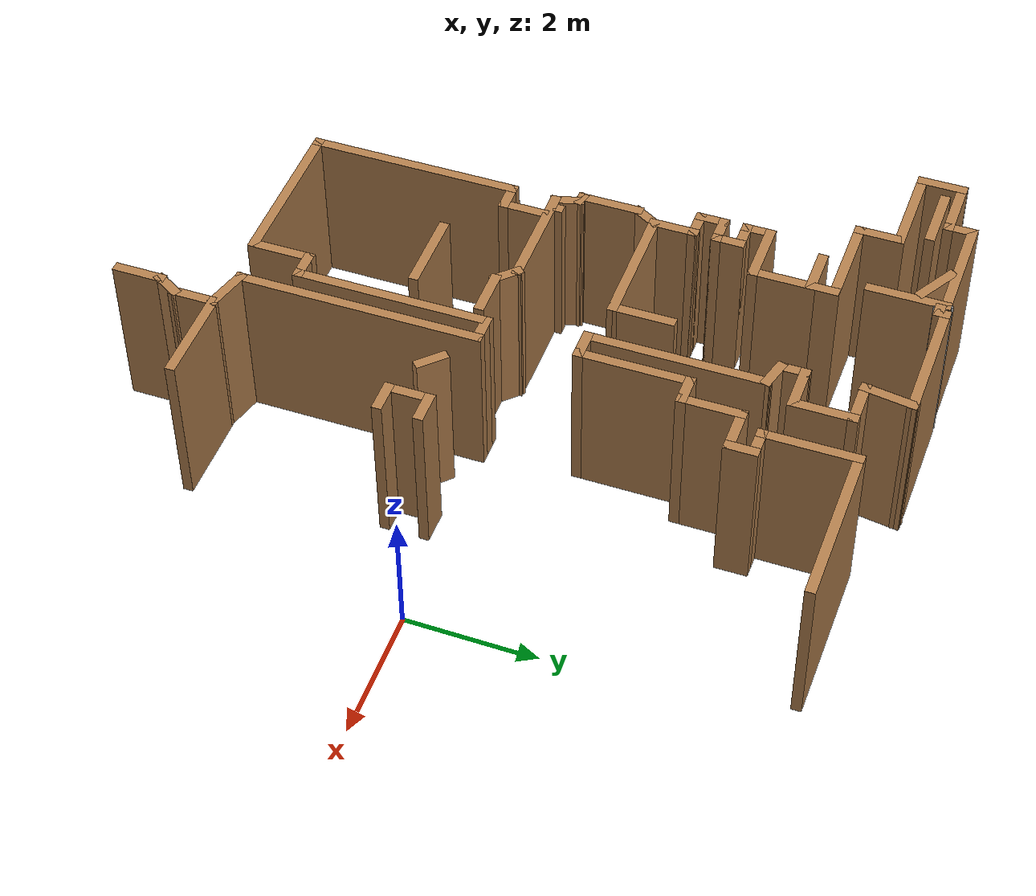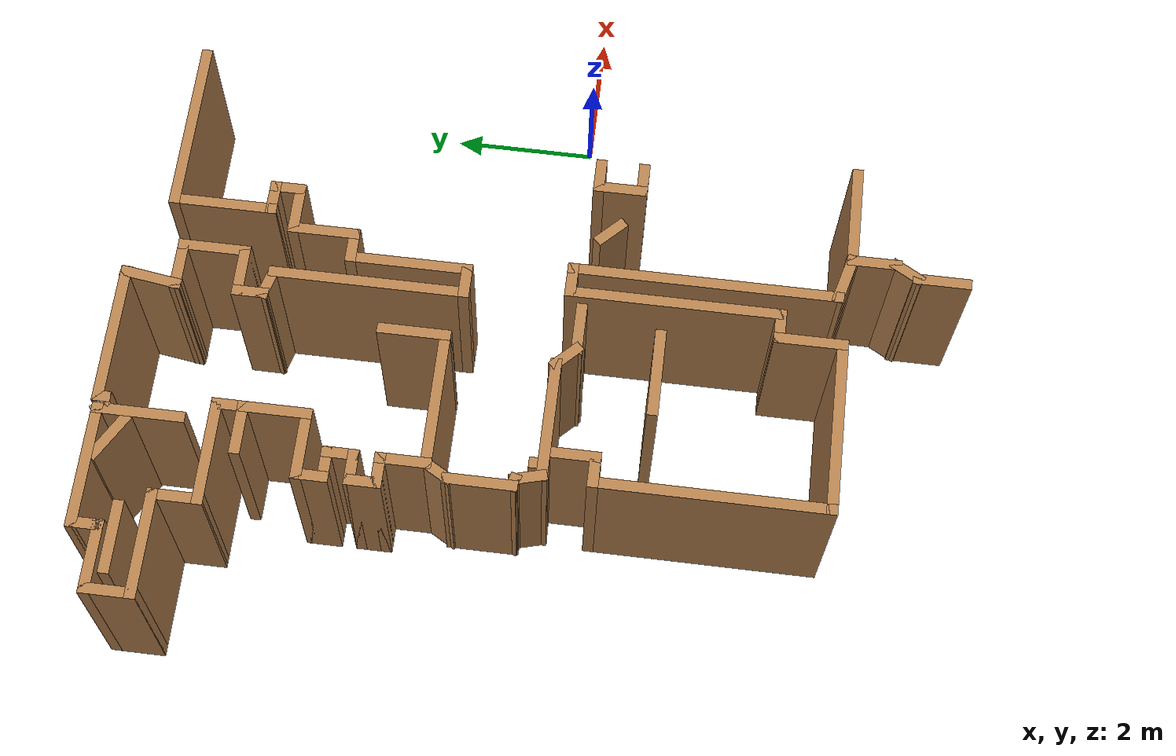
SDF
<sdf version="1.6">
 <model name="map_30">
  <pose>-2.27007 0.308618 0 0 -0 0</pose>
  <link name="Wall_10">
   <collision name="Wall_10_Collision">
    <geometry><box><size>0.75 0.15 2.5</size></box></geometry>
    <pose>0 0 1.25 0 -0 0</pose>
   </collision>
   <visual name="Wall_10_Visual">
    <pose>0 0 1.25 0 -0 0</pose>
    <geometry><box><size>0.75 0.15 2.5</size></box></geometry>
    <material>
     <script><uri>file://media/materials/scripts/gazebo.material</uri><name>Gazebo/Wood</name></script>
     <ambient>1 1 1 1</ambient>
    </material>
    <meta><layer>0</layer></meta>
   </visual>
   <pose>-6.15506 4.97315 0 0 -0 -1.5708</pose>
  </link>
  <link name="Wall_13">
   <collision name="Wall_13_Collision">
    <geometry><box><size>1.5 0.15 2.5</size></box></geometry>
    <pose>0 0 1.25 0 -0 0</pose>
   </collision>
   <visual name="Wall_13_Visual">
    <pose>0 0 1.25 0 -0 0</pose>
    <geometry><box><size>1.5 0.15 2.5</size></box></geometry>
    <material>
     <script><uri>file://media/materials/scripts/gazebo.material</uri><name>Gazebo/Wood</name></script>
     <ambient>1 1 1 1</ambient>
    </material>
    <meta><layer>0</layer></meta>
   </visual>
   <pose>-5.48006 4.67315 0 0 -0 0</pose>
  </link>
  <link name="Wall_14">
   <collision name="Wall_14_Collision">
    <geometry><box><size>0.75 0.15 2.5</size></box></geometry>
    <pose>0 0 1.25 0 -0 0</pose>
   </collision>
   <visual name="Wall_14_Visual">
    <pose>0 0 1.25 0 -0 0</pose>
    <geometry><box><size>0.75 0.15 2.5</size></box></geometry>
    <material>
     <script><uri>file://media/materials/scripts/gazebo.material</uri><name>Gazebo/Wood</name></script>
     <ambient>1 1 1 1</ambient>
    </material>
    <meta><layer>0</layer></meta>
   </visual>
   <pose>-4.80506 4.37315 0 0 -0 -1.5708</pose>
  </link>
  <link name="Wall_15">
   <collision name="Wall_15_Collision">
    <geometry><box><size>1.5 0.15 2.5</size></box></geometry>
    <pose>0 0 1.25 0 -0 0</pose>
   </collision>
   <visual name="Wall_15_Visual">
    <pose>0 0 1.25 0 -0 0</pose>
    <geometry><box><size>1.5 0.15 2.5</size></box></geometry>
    <material>
     <script><uri>file://media/materials/scripts/gazebo.material</uri><name>Gazebo/Wood</name></script>
     <ambient>1 1 1 1</ambient>
    </material>
    <meta><layer>0</layer></meta>
   </visual>
   <pose>-4.13006 4.07315 0 0 -0 0</pose>
  </link>
  <link name="Wall_153">
   <collision name="Wall_153_Collision">
    <geometry><box><size>2.5 0.15 2.5</size></box></geometry>
    <pose>0 0 1.25 0 -0 0</pose>
   </collision>
   <visual name="Wall_153_Visual">
    <pose>0 0 1.25 0 -0 0</pose>
    <geometry><box><size>2.5 0.15 2.5</size></box></geometry>
    <material>
     <script><uri>file://media/materials/scripts/gazebo.material</uri><name>Gazebo/Wood</name></script>
     <ambient>1 1 1 1</ambient>
    </material>
    <meta><layer>0</layer></meta>
   </visual>
   <pose>0.680059 5.21618 0 0 -0 3.14159</pose>
  </link>
  <link name="Wall_154">
   <collision name="Wall_154_Collision">
    <geometry><box><size>1.5 0.15 2.5</size></box></geometry>
    <pose>0 0 1.25 0 -0 0</pose>
   </collision>
   <visual name="Wall_154_Visual">
    <pose>0 0 1.25 0 -0 0</pose>
    <geometry><box><size>1.5 0.15 2.5</size></box></geometry>
    <material>
     <script><uri>file://media/materials/scripts/gazebo.material</uri><name>Gazebo/Wood</name></script>
     <ambient>1 1 1 1</ambient>
    </material>
    <meta><layer>0</layer></meta>
   </visual>
   <pose>-0.494941 4.54118 0 0 -0 -1.5708</pose>
  </link>
  <link name="Wall_155">
   <collision name="Wall_155_Collision">
    <geometry><box><size>0.5 0.15 2.5</size></box></geometry>
    <pose>0 0 1.25 0 -0 0</pose>
   </collision>
   <visual name="Wall_155_Visual">
    <pose>0 0 1.25 0 -0 0</pose>
    <geometry><box><size>0.5 0.15 2.5</size></box></geometry>
    <material>
     <script><uri>file://media/materials/scripts/gazebo.material</uri><name>Gazebo/Wood</name></script>
     <ambient>1 1 1 1</ambient>
    </material>
    <meta><layer>0</layer></meta>
   </visual>
   <pose>-0.319941 3.86618 0 0 -0 0</pose>
  </link>
  <link name="Wall_156">
   <collision name="Wall_156_Collision">
    <geometry><box><size>0.5 0.15 2.5</size></box></geometry>
    <pose>0 0 1.25 0 -0 0</pose>
   </collision>
   <visual name="Wall_156_Visual">
    <pose>0 0 1.25 0 -0 0</pose>
    <geometry><box><size>0.5 0.15 2.5</size></box></geometry>
    <material>
     <script><uri>file://media/materials/scripts/gazebo.material</uri><name>Gazebo/Wood</name></script>
     <ambient>1 1 1 1</ambient>
    </material>
    <meta><layer>0</layer></meta>
   </visual>
   <pose>-0.14494 3.69118 0 0 -0 -1.5708</pose>
  </link>
  <link name="Wall_157">
   <collision name="Wall_157_Collision">
    <geometry><box><size>0.75 0.15 2.5</size></box></geometry>
    <pose>0 0 1.25 0 -0 0</pose>
   </collision>
   <visual name="Wall_157_Visual">
    <pose>0 0 1.25 0 -0 0</pose>
    <geometry><box><size>0.75 0.15 2.5</size></box></geometry>
    <material>
     <script><uri>file://media/materials/scripts/gazebo.material</uri><name>Gazebo/Wood</name></script>
     <ambient>1 1 1 1</ambient>
    </material>
    <meta><layer>0</layer></meta>
   </visual>
   <pose>-0.444941 3.51618 0 0 -0 3.14159</pose>
  </link>
  <link name="Wall_158">
   <collision name="Wall_158_Collision">
    <geometry><box><size>1 0.15 2.5</size></box></geometry>
    <pose>0 0 1.25 0 -0 0</pose>
   </collision>
   <visual name="Wall_158_Visual">
    <pose>0 0 1.25 0 -0 0</pose>
    <geometry><box><size>1 0.15 2.5</size></box></geometry>
    <material>
     <script><uri>file://media/materials/scripts/gazebo.material</uri><name>Gazebo/Wood</name></script>
     <ambient>1 1 1 1</ambient>
    </material>
    <meta><layer>0</layer></meta>
   </visual>
   <pose>-0.744941 3.09118 0 0 -0 -1.5708</pose>
  </link>
  <link name="Wall_16">
   <collision name="Wall_16_Collision">
    <geometry><box><size>0.5 0.15 2.5</size></box></geometry>
    <pose>0 0 1.25 0 -0 0</pose>
   </collision>
   <visual name="Wall_16_Visual">
    <pose>0 0 1.25 0 -0 0</pose>
    <geometry><box><size>0.5 0.15 2.5</size></box></geometry>
    <material>
     <script><uri>file://media/materials/scripts/gazebo.material</uri><name>Gazebo/Wood</name></script>
     <ambient>1 1 1 1</ambient>
    </material>
    <meta><layer>0</layer></meta>
   </visual>
   <pose>-3.45506 3.89815 0 0 -0 -1.5708</pose>
  </link>
  <link name="Wall_161">
   <collision name="Wall_161_Collision">
    <geometry><box><size>0.5 0.15 2.5</size></box></geometry>
    <pose>0 0 1.25 0 -0 0</pose>
   </collision>
   <visual name="Wall_161_Visual">
    <pose>0 0 1.25 0 -0 0</pose>
    <geometry><box><size>0.5 0.15 2.5</size></box></geometry>
    <material>
     <script><uri>file://media/materials/scripts/gazebo.material</uri><name>Gazebo/Wood</name></script>
     <ambient>1 1 1 1</ambient>
    </material>
    <meta><layer>0</layer></meta>
   </visual>
   <pose>-0.919941 2.66618 0 0 -0 3.14159</pose>
  </link>
  <link name="Wall_162">
   <collision name="Wall_162_Collision">
    <geometry><box><size>1.75 0.15 2.5</size></box></geometry>
    <pose>0 0 1.25 0 -0 0</pose>
   </collision>
   <visual name="Wall_162_Visual">
    <pose>0 0 1.25 0 -0 0</pose>
    <geometry><box><size>1.75 0.15 2.5</size></box></geometry>
    <material>
     <script><uri>file://media/materials/scripts/gazebo.material</uri><name>Gazebo/Wood</name></script>
     <ambient>1 1 1 1</ambient>
    </material>
    <meta><layer>0</layer></meta>
   </visual>
   <pose>-1.09494 1.86618 0 0 -0 -1.5708</pose>
  </link>
  <link name="Wall_163">
   <collision name="Wall_163_Collision">
    <geometry><box><size>0.5 0.15 2.5</size></box></geometry>
    <pose>0 0 1.25 0 -0 0</pose>
   </collision>
   <visual name="Wall_163_Visual">
    <pose>0 0 1.25 0 -0 0</pose>
    <geometry><box><size>0.5 0.15 2.5</size></box></geometry>
    <material>
     <script><uri>file://media/materials/scripts/gazebo.material</uri><name>Gazebo/Wood</name></script>
     <ambient>1 1 1 1</ambient>
    </material>
    <meta><layer>0</layer></meta>
   </visual>
   <pose>-1.26994 1.06618 0 0 -0 3.14159</pose>
  </link>
  <link name="Wall_164">
   <collision name="Wall_164_Collision">
    <geometry><box><size>2.75 0.15 2.5</size></box></geometry>
    <pose>0 0 1.25 0 -0 0</pose>
   </collision>
   <visual name="Wall_164_Visual">
    <pose>0 0 1.25 0 -0 0</pose>
    <geometry><box><size>2.75 0.15 2.5</size></box></geometry>
    <material>
     <script><uri>file://media/materials/scripts/gazebo.material</uri><name>Gazebo/Wood</name></script>
     <ambient>1 1 1 1</ambient>
    </material>
    <meta><layer>0</layer></meta>
   </visual>
   <pose>-1.44494 2.36618 0 0 -0 1.5708</pose>
  </link>
  <link name="Wall_165">
   <collision name="Wall_165_Collision">
    <geometry><box><size>0.5 0.15 2.5</size></box></geometry>
    <pose>0 0 1.25 0 -0 0</pose>
   </collision>
   <visual name="Wall_165_Visual">
    <pose>0 0 1.25 0 -0 0</pose>
    <geometry><box><size>0.5 0.15 2.5</size></box></geometry>
    <material>
     <script><uri>file://media/materials/scripts/gazebo.material</uri><name>Gazebo/Wood</name></script>
     <ambient>1 1 1 1</ambient>
    </material>
    <meta><layer>0</layer></meta>
   </visual>
   <pose>-1.61398 3.71148 0 0 -0 2.87979</pose>
  </link>
  <link name="Wall_166">
   <collision name="Wall_166_Collision">
    <geometry><box><size>0.5 0.15 2.5</size></box></geometry>
    <pose>0 0 1.25 0 -0 0</pose>
   </collision>
   <visual name="Wall_166_Visual">
    <pose>0 0 1.25 0 -0 0</pose>
    <geometry><box><size>0.5 0.15 2.5</size></box></geometry>
    <material>
     <script><uri>file://media/materials/scripts/gazebo.material</uri><name>Gazebo/Wood</name></script>
     <ambient>1 1 1 1</ambient>
    </material>
    <meta><layer>0</layer></meta>
   </visual>
   <pose>-1.78302 3.93177 0 0 -0 1.5708</pose>
  </link>
  <link name="Wall_17">
   <collision name="Wall_17_Collision">
    <geometry><box><size>0.75 0.15 2.5</size></box></geometry>
    <pose>0 0 1.25 0 -0 0</pose>
   </collision>
   <visual name="Wall_17_Visual">
    <pose>0 0 1.25 0 -0 0</pose>
    <geometry><box><size>0.75 0.15 2.5</size></box></geometry>
    <material>
     <script><uri>file://media/materials/scripts/gazebo.material</uri><name>Gazebo/Wood</name></script>
     <ambient>1 1 1 1</ambient>
    </material>
    <meta><layer>0</layer></meta>
   </visual>
   <pose>-3.75506 3.72315 0 0 -0 3.14159</pose>
  </link>
  <link name="Wall_171">
   <collision name="Wall_171_Collision">
    <geometry><box><size>0.75 0.15 2.5</size></box></geometry>
    <pose>0 0 1.25 0 -0 0</pose>
   </collision>
   <visual name="Wall_171_Visual">
    <pose>0 0 1.25 0 -0 0</pose>
    <geometry><box><size>0.75 0.15 2.5</size></box></geometry>
    <material>
     <script><uri>file://media/materials/scripts/gazebo.material</uri><name>Gazebo/Wood</name></script>
     <ambient>1 1 1 1</ambient>
    </material>
    <meta><layer>0</layer></meta>
   </visual>
   <pose>-1.48301 4.10677 0 0 -0 0</pose>
  </link>
  <link name="Wall_172">
   <collision name="Wall_172_Collision">
    <geometry><box><size>1 0.15 2.5</size></box></geometry>
    <pose>0 0 1.25 0 -0 0</pose>
   </collision>
   <visual name="Wall_172_Visual">
    <pose>0 0 1.25 0 -0 0</pose>
    <geometry><box><size>1 0.15 2.5</size></box></geometry>
    <material>
     <script><uri>file://media/materials/scripts/gazebo.material</uri><name>Gazebo/Wood</name></script>
     <ambient>1 1 1 1</ambient>
    </material>
    <meta><layer>0</layer></meta>
   </visual>
   <pose>-1.18301 4.53177 0 0 -0 1.5708</pose>
  </link>
  <link name="Wall_173">
   <collision name="Wall_173_Collision">
    <geometry><box><size>0.75 0.15 2.5</size></box></geometry>
    <pose>0 0 1.25 0 -0 0</pose>
   </collision>
   <visual name="Wall_173_Visual">
    <pose>0 0 1.25 0 -0 0</pose>
    <geometry><box><size>0.75 0.15 2.5</size></box></geometry>
    <material>
     <script><uri>file://media/materials/scripts/gazebo.material</uri><name>Gazebo/Wood</name></script>
     <ambient>1 1 1 1</ambient>
    </material>
    <meta><layer>0</layer></meta>
   </visual>
   <pose>-1.48301 4.95677 0 0 -0 3.14159</pose>
  </link>
  <link name="Wall_174">
   <collision name="Wall_174_Collision">
    <geometry><box><size>0.852629 0.15 2.5</size></box></geometry>
    <pose>0 0 1.25 0 -0 0</pose>
   </collision>
   <visual name="Wall_174_Visual">
    <pose>0 0 1.25 0 -0 0</pose>
    <geometry><box><size>0.852629 0.15 2.5</size></box></geometry>
    <material>
     <script><uri>file://media/materials/scripts/gazebo.material</uri><name>Gazebo/Wood</name></script>
     <ambient>1 1 1 1</ambient>
    </material>
    <meta><layer>0</layer></meta>
   </visual>
   <pose>-1.73368 5.3046 0 0 -0 1.42991</pose>
  </link>
  <link name="Wall_176">
   <collision name="Wall_176_Collision">
    <geometry><box><size>1.25 0.15 2.5</size></box></geometry>
    <pose>0 0 1.25 0 -0 0</pose>
   </collision>
   <visual name="Wall_176_Visual">
    <pose>0 0 1.25 0 -0 0</pose>
    <geometry><box><size>1.25 0.15 2.5</size></box></geometry>
    <material>
     <script><uri>file://media/materials/scripts/gazebo.material</uri><name>Gazebo/Wood</name></script>
     <ambient>1 1 1 1</ambient>
    </material>
    <meta><layer>0</layer></meta>
   </visual>
   <pose>-3.70506 5.07315 0 0 -0 -1.5708</pose>
  </link>
  <link name="Wall_180">
   <collision name="Wall_180_Collision">
    <geometry><box><size>1 0.15 2.5</size></box></geometry>
    <pose>0 0 1.25 0 -0 0</pose>
   </collision>
   <visual name="Wall_180_Visual">
    <pose>0 0 1.25 0 -0 0</pose>
    <geometry><box><size>1 0.15 2.5</size></box></geometry>
    <material>
     <script><uri>file://media/materials/scripts/gazebo.material</uri><name>Gazebo/Wood</name></script>
     <ambient>1 1 1 1</ambient>
    </material>
    <meta><layer>0</layer></meta>
   </visual>
   <pose>-5.44016 5.07417 0 0 -0 3.14159</pose>
  </link>
  <link name="Wall_182">
   <collision name="Wall_182_Collision">
    <geometry><box><size>0.75 0.15 2.5</size></box></geometry>
    <pose>0 0 1.25 0 -0 0</pose>
   </collision>
   <visual name="Wall_182_Visual">
    <pose>0 0 1.25 0 -0 0</pose>
    <geometry><box><size>0.75 0.15 2.5</size></box></geometry>
    <material>
     <script><uri>file://media/materials/scripts/gazebo.material</uri><name>Gazebo/Wood</name></script>
     <ambient>1 1 1 1</ambient>
    </material>
    <meta><layer>0</layer></meta>
   </visual>
   <pose>-4.08456 5.38678 0 0 -0 -0.523599</pose>
  </link>
  <link name="Wall_186">
   <collision name="Wall_186_Collision">
    <geometry><box><size>2 0.15 2.5</size></box></geometry>
    <pose>0 0 1.25 0 -0 0</pose>
   </collision>
   <visual name="Wall_186_Visual">
    <pose>0 0 1.25 0 -0 0</pose>
    <geometry><box><size>2 0.15 2.5</size></box></geometry>
    <material>
     <script><uri>file://media/materials/scripts/gazebo.material</uri><name>Gazebo/Wood</name></script>
     <ambient>1 1 1 1</ambient>
    </material>
    <meta><layer>0</layer></meta>
   </visual>
   <pose>-3.03006 1.22315 0 0 -0 0</pose>
  </link>
  <link name="Wall_187">
   <collision name="Wall_187_Collision">
    <geometry><box><size>1 0.15 2.5</size></box></geometry>
    <pose>0 0 1.25 0 -0 0</pose>
   </collision>
   <visual name="Wall_187_Visual">
    <pose>0 0 1.25 0 -0 0</pose>
    <geometry><box><size>1 0.15 2.5</size></box></geometry>
    <material>
     <script><uri>file://media/materials/scripts/gazebo.material</uri><name>Gazebo/Wood</name></script>
     <ambient>1 1 1 1</ambient>
    </material>
    <meta><layer>0</layer></meta>
   </visual>
   <pose>-2.10506 1.64815 0 0 -0 1.5708</pose>
  </link>
  <link name="Wall_189">
   <collision name="Wall_189_Collision">
    <geometry><box><size>1.25 0.15 2.5</size></box></geometry>
    <pose>0 0 1.25 0 -0 0</pose>
   </collision>
   <visual name="Wall_189_Visual">
    <pose>0 0 1.25 0 -0 0</pose>
    <geometry><box><size>1.25 0.15 2.5</size></box></geometry>
    <material>
     <script><uri>file://media/materials/scripts/gazebo.material</uri><name>Gazebo/Wood</name></script>
     <ambient>1 1 1 1</ambient>
    </material>
    <meta><layer>0</layer></meta>
   </visual>
   <pose>-2.30374 -1.6337 0 0 -0 3.14159</pose>
  </link>
  <link name="Wall_191">
   <collision name="Wall_191_Collision">
    <geometry><box><size>1.5 0.15 2.5</size></box></geometry>
    <pose>0 0 1.25 0 -0 0</pose>
   </collision>
   <visual name="Wall_191_Visual">
    <pose>0 0 1.25 0 -0 0</pose>
    <geometry><box><size>1.5 0.15 2.5</size></box></geometry>
    <material>
     <script><uri>file://media/materials/scripts/gazebo.material</uri><name>Gazebo/Wood</name></script>
     <ambient>1 1 1 1</ambient>
    </material>
    <meta><layer>0</layer></meta>
   </visual>
   <pose>0.350366 -4.11681 0 0 -0 0</pose>
  </link>
  <link name="Wall_193">
   <collision name="Wall_193_Collision">
    <geometry><box><size>0.5 0.15 2.5</size></box></geometry>
    <pose>0 0 1.25 0 -0 0</pose>
   </collision>
   <visual name="Wall_193_Visual">
    <pose>0 0 1.25 0 -0 0</pose>
    <geometry><box><size>0.5 0.15 2.5</size></box></geometry>
    <material>
     <script><uri>file://media/materials/scripts/gazebo.material</uri><name>Gazebo/Wood</name></script>
     <ambient>1 1 1 1</ambient>
    </material>
    <meta><layer>0</layer></meta>
   </visual>
   <pose>-0.288422 -0.809094 0 0 -0 -0.785398</pose>
  </link>
  <link name="Wall_195">
   <collision name="Wall_195_Collision">
    <geometry><box><size>0.75 0.15 2.5</size></box></geometry>
    <pose>0 0 1.25 0 -0 0</pose>
   </collision>
   <visual name="Wall_195_Visual">
    <pose>0 0 1.25 0 -0 0</pose>
    <geometry><box><size>0.75 0.15 2.5</size></box></geometry>
    <material>
     <script><uri>file://media/materials/scripts/gazebo.material</uri><name>Gazebo/Wood</name></script>
     <ambient>1 1 1 1</ambient>
    </material>
    <meta><layer>0</layer></meta>
   </visual>
   <pose>0.397406 -0.869697 0 0 -0 -1.5708</pose>
  </link>
  <link name="Wall_196">
   <collision name="Wall_196_Collision">
    <geometry><box><size>0.5 0.15 2.5</size></box></geometry>
    <pose>0 0 1.25 0 -0 0</pose>
   </collision>
   <visual name="Wall_196_Visual">
    <pose>0 0 1.25 0 -0 0</pose>
    <geometry><box><size>0.5 0.15 2.5</size></box></geometry>
    <material>
     <script><uri>file://media/materials/scripts/gazebo.material</uri><name>Gazebo/Wood</name></script>
     <ambient>1 1 1 1</ambient>
    </material>
    <meta><layer>0</layer></meta>
   </visual>
   <pose>0.572406 -1.1697 0 0 -0 0</pose>
  </link>
  <link name="Wall_198">
   <collision name="Wall_198_Collision">
    <geometry><box><size>0.5 0.15 2.5</size></box></geometry>
    <pose>0 0 1.25 0 -0 0</pose>
   </collision>
   <visual name="Wall_198_Visual">
    <pose>0 0 1.25 0 -0 0</pose>
    <geometry><box><size>0.5 0.15 2.5</size></box></geometry>
    <material>
     <script><uri>file://media/materials/scripts/gazebo.material</uri><name>Gazebo/Wood</name></script>
     <ambient>1 1 1 1</ambient>
    </material>
    <meta><layer>0</layer></meta>
   </visual>
   <pose>0.572406 -0.569697 0 0 -0 3.14159</pose>
  </link>
  <link name="Wall_21">
   <collision name="Wall_21_Collision">
    <geometry><box><size>1 0.15 2.5</size></box></geometry>
    <pose>0 0 1.25 0 -0 0</pose>
   </collision>
   <visual name="Wall_21_Visual">
    <pose>0 0 1.25 0 -0 0</pose>
    <geometry><box><size>1 0.15 2.5</size></box></geometry>
    <material>
     <script><uri>file://media/materials/scripts/gazebo.material</uri><name>Gazebo/Wood</name></script>
     <ambient>1 1 1 1</ambient>
    </material>
    <meta><layer>0</layer></meta>
   </visual>
   <pose>-3.45506 3.29815 0 0 -0 -1.5708</pose>
  </link>
  <link name="Wall_22">
   <collision name="Wall_22_Collision">
    <geometry><box><size>1 0.15 2.5</size></box></geometry>
    <pose>0 0 1.25 0 -0 0</pose>
   </collision>
   <visual name="Wall_22_Visual">
    <pose>0 0 1.25 0 -0 0</pose>
    <geometry><box><size>1 0.15 2.5</size></box></geometry>
    <material>
     <script><uri>file://media/materials/scripts/gazebo.material</uri><name>Gazebo/Wood</name></script>
     <ambient>1 1 1 1</ambient>
    </material>
    <meta><layer>0</layer></meta>
   </visual>
   <pose>-3.88006 2.87315 0 0 -0 3.14159</pose>
  </link>
  <link name="Wall_23">
   <collision name="Wall_23_Collision">
    <geometry><box><size>0.5 0.15 2.5</size></box></geometry>
    <pose>0 0 1.25 0 -0 0</pose>
   </collision>
   <visual name="Wall_23_Visual">
    <pose>0 0 1.25 0 -0 0</pose>
    <geometry><box><size>0.5 0.15 2.5</size></box></geometry>
    <material>
     <script><uri>file://media/materials/scripts/gazebo.material</uri><name>Gazebo/Wood</name></script>
     <ambient>1 1 1 1</ambient>
    </material>
    <meta><layer>0</layer></meta>
   </visual>
   <pose>-4.30506 2.69815 0 0 -0 -1.5708</pose>
  </link>
  <link name="Wall_24">
   <collision name="Wall_24_Collision">
    <geometry><box><size>0.5 0.15 2.5</size></box></geometry>
    <pose>0 0 1.25 0 -0 0</pose>
   </collision>
   <visual name="Wall_24_Visual">
    <pose>0 0 1.25 0 -0 0</pose>
    <geometry><box><size>0.5 0.15 2.5</size></box></geometry>
    <material>
     <script><uri>file://media/materials/scripts/gazebo.material</uri><name>Gazebo/Wood</name></script>
     <ambient>1 1 1 1</ambient>
    </material>
    <meta><layer>0</layer></meta>
   </visual>
   <pose>-4.13006 2.52315 0 0 -0 0</pose>
  </link>
  <link name="Wall_25">
   <collision name="Wall_25_Collision">
    <geometry><box><size>0.5 0.15 2.5</size></box></geometry>
    <pose>0 0 1.25 0 -0 0</pose>
   </collision>
   <visual name="Wall_25_Visual">
    <pose>0 0 1.25 0 -0 0</pose>
    <geometry><box><size>0.5 0.15 2.5</size></box></geometry>
    <material>
     <script><uri>file://media/materials/scripts/gazebo.material</uri><name>Gazebo/Wood</name></script>
     <ambient>1 1 1 1</ambient>
    </material>
    <meta><layer>0</layer></meta>
   </visual>
   <pose>-3.95506 2.34815 0 0 -0 -1.5708</pose>
  </link>
  <link name="Wall_26">
   <collision name="Wall_26_Collision">
    <geometry><box><size>0.5 0.15 2.5</size></box></geometry>
    <pose>0 0 1.25 0 -0 0</pose>
   </collision>
   <visual name="Wall_26_Visual">
    <pose>0 0 1.25 0 -0 0</pose>
    <geometry><box><size>0.5 0.15 2.5</size></box></geometry>
    <material>
     <script><uri>file://media/materials/scripts/gazebo.material</uri><name>Gazebo/Wood</name></script>
     <ambient>1 1 1 1</ambient>
    </material>
    <meta><layer>0</layer></meta>
   </visual>
   <pose>-4.13006 2.17315 0 0 -0 3.14159</pose>
  </link>
  <link name="Wall_27">
   <collision name="Wall_27_Collision">
    <geometry><box><size>0.5 0.15 2.5</size></box></geometry>
    <pose>0 0 1.25 0 -0 0</pose>
   </collision>
   <visual name="Wall_27_Visual">
    <pose>0 0 1.25 0 -0 0</pose>
    <geometry><box><size>0.5 0.15 2.5</size></box></geometry>
    <material>
     <script><uri>file://media/materials/scripts/gazebo.material</uri><name>Gazebo/Wood</name></script>
     <ambient>1 1 1 1</ambient>
    </material>
    <meta><layer>0</layer></meta>
   </visual>
   <pose>-4.30506 1.99815 0 0 -0 -1.5708</pose>
  </link>
  <link name="Wall_28">
   <collision name="Wall_28_Collision">
    <geometry><box><size>0.5 0.15 2.5</size></box></geometry>
    <pose>0 0 1.25 0 -0 0</pose>
   </collision>
   <visual name="Wall_28_Visual">
    <pose>0 0 1.25 0 -0 0</pose>
    <geometry><box><size>0.5 0.15 2.5</size></box></geometry>
    <material>
     <script><uri>file://media/materials/scripts/gazebo.material</uri><name>Gazebo/Wood</name></script>
     <ambient>1 1 1 1</ambient>
    </material>
    <meta><layer>0</layer></meta>
   </visual>
   <pose>-4.13006 1.82315 0 0 -0 0</pose>
  </link>
  <link name="Wall_29">
   <collision name="Wall_29_Collision">
    <geometry><box><size>0.75 0.15 2.5</size></box></geometry>
    <pose>0 0 1.25 0 -0 0</pose>
   </collision>
   <visual name="Wall_29_Visual">
    <pose>0 0 1.25 0 -0 0</pose>
    <geometry><box><size>0.75 0.15 2.5</size></box></geometry>
    <material>
     <script><uri>file://media/materials/scripts/gazebo.material</uri><name>Gazebo/Wood</name></script>
     <ambient>1 1 1 1</ambient>
    </material>
    <meta><layer>0</layer></meta>
   </visual>
   <pose>-3.95506 1.52315 0 0 -0 -1.5708</pose>
  </link>
  <link name="Wall_3">
   <collision name="Wall_3_Collision">
    <geometry><box><size>2 0.15 2.5</size></box></geometry>
    <pose>0 0 1.25 0 -0 0</pose>
   </collision>
   <visual name="Wall_3_Visual">
    <pose>0 0 1.25 0 -0 0</pose>
    <geometry><box><size>2 0.15 2.5</size></box></geometry>
    <material>
     <script><uri>file://media/materials/scripts/gazebo.material</uri><name>Gazebo/Wood</name></script>
     <ambient>1 1 1 1</ambient>
    </material>
    <meta><layer>0</layer></meta>
   </visual>
   <pose>-2.60935 5.65244 0 0 -0 3.14159</pose>
  </link>
  <link name="Wall_30">
   <collision name="Wall_30_Collision">
    <geometry><box><size>0.5 0.15 2.5</size></box></geometry>
    <pose>0 0 1.25 0 -0 0</pose>
   </collision>
   <visual name="Wall_30_Visual">
    <pose>0 0 1.25 0 -0 0</pose>
    <geometry><box><size>0.5 0.15 2.5</size></box></geometry>
    <material>
     <script><uri>file://media/materials/scripts/gazebo.material</uri><name>Gazebo/Wood</name></script>
     <ambient>1 1 1 1</ambient>
    </material>
    <meta><layer>0</layer></meta>
   </visual>
   <pose>-4.04256 1.07159 0 0 -0 -2.0944</pose>
  </link>
  <link name="Wall_33">
   <collision name="Wall_33_Collision">
    <geometry><box><size>0.15 0.15 2.5</size></box></geometry>
    <pose>0 0 1.25 0 -0 0</pose>
   </collision>
   <visual name="Wall_33_Visual">
    <pose>0 0 1.25 0 -0 0</pose>
    <geometry><box><size>0.15 0.15 2.5</size></box></geometry>
    <material>
     <script><uri>file://media/materials/scripts/gazebo.material</uri><name>Gazebo/Wood</name></script>
     <ambient>1 1 1 1</ambient>
    </material>
    <meta><layer>0</layer></meta>
   </visual>
   <pose>-3.78006 -0.179962 0 0 -0 0</pose>
  </link>
  <link name="Wall_35">
   <collision name="Wall_35_Collision">
    <geometry><box><size>1 0.15 2.5</size></box></geometry>
    <pose>0 0 1.25 0 -0 0</pose>
   </collision>
   <visual name="Wall_35_Visual">
    <pose>0 0 1.25 0 -0 0</pose>
    <geometry><box><size>1 0.15 2.5</size></box></geometry>
    <material>
     <script><uri>file://media/materials/scripts/gazebo.material</uri><name>Gazebo/Wood</name></script>
     <ambient>1 1 1 1</ambient>
    </material>
    <meta><layer>0</layer></meta>
   </visual>
   <pose>-4.13006 0.495038 0 0 -0 -1.5708</pose>
  </link>
  <link name="Wall_36">
   <collision name="Wall_36_Collision">
    <geometry><box><size>0.25 0.15 2.5</size></box></geometry>
    <pose>0 0 1.25 0 -0 0</pose>
   </collision>
   <visual name="Wall_36_Visual">
    <pose>0 0 1.25 0 -0 0</pose>
    <geometry><box><size>0.25 0.15 2.5</size></box></geometry>
    <material>
     <script><uri>file://media/materials/scripts/gazebo.material</uri><name>Gazebo/Wood</name></script>
     <ambient>1 1 1 1</ambient>
    </material>
    <meta><layer>0</layer></meta>
   </visual>
   <pose>-4.08176 0.057097 0 0 -0 -0.261799</pose>
  </link>
  <link name="Wall_37">
   <collision name="Wall_37_Collision">
    <geometry><box><size>0.5 0.15 2.5</size></box></geometry>
    <pose>0 0 1.25 0 -0 0</pose>
   </collision>
   <visual name="Wall_37_Visual">
    <pose>0 0 1.25 0 -0 0</pose>
    <geometry><box><size>0.5 0.15 2.5</size></box></geometry>
    <material>
     <script><uri>file://media/materials/scripts/gazebo.material</uri><name>Gazebo/Wood</name></script>
     <ambient>1 1 1 1</ambient>
    </material>
    <meta><layer>0</layer></meta>
   </visual>
   <pose>-3.98817 -0.124881 0 0 -0 -1.309</pose>
  </link>
  <link name="Wall_38">
   <collision name="Wall_38_Collision">
    <geometry><box><size>1.75 0.15 2.5</size></box></geometry>
    <pose>0 0 1.25 0 -0 0</pose>
   </collision>
   <visual name="Wall_38_Visual">
    <pose>0 0 1.25 0 -0 0</pose>
    <geometry><box><size>1.75 0.15 2.5</size></box></geometry>
    <material>
     <script><uri>file://media/materials/scripts/gazebo.material</uri><name>Gazebo/Wood</name></script>
     <ambient>1 1 1 1</ambient>
    </material>
    <meta><layer>0</layer></meta>
   </visual>
   <pose>-3.14288 -0.293918 0 0 -0 0</pose>
  </link>
  <link name="Wall_39">
   <collision name="Wall_39_Collision">
    <geometry><box><size>0.5 0.15 2.5</size></box></geometry>
    <pose>0 0 1.25 0 -0 0</pose>
   </collision>
   <visual name="Wall_39_Visual">
    <pose>0 0 1.25 0 -0 0</pose>
    <geometry><box><size>0.5 0.15 2.5</size></box></geometry>
    <material>
     <script><uri>file://media/materials/scripts/gazebo.material</uri><name>Gazebo/Wood</name></script>
     <ambient>1 1 1 1</ambient>
    </material>
    <meta><layer>0</layer></meta>
   </visual>
   <pose>-2.21914 -0.417661 0 0 -0 -0.785398</pose>
  </link>
  <link name="Wall_4">
   <collision name="Wall_4_Collision">
    <geometry><box><size>0.25 0.15 2.5</size></box></geometry>
    <pose>0 0 1.25 0 -0 0</pose>
   </collision>
   <visual name="Wall_4_Visual">
    <pose>0 0 1.25 0 -0 0</pose>
    <geometry><box><size>0.25 0.15 2.5</size></box></geometry>
    <material>
     <script><uri>file://media/materials/scripts/gazebo.material</uri><name>Gazebo/Wood</name></script>
     <ambient>1 1 1 1</ambient>
    </material>
    <meta><layer>0</layer></meta>
   </visual>
   <pose>-3.53435 5.60244 0 0 -0 -1.5708</pose>
  </link>
  <link name="Wall_40">
   <collision name="Wall_40_Collision">
    <geometry><box><size>0.75 0.15 2.5</size></box></geometry>
    <pose>0 0 1.25 0 -0 0</pose>
   </collision>
   <visual name="Wall_40_Visual">
    <pose>0 0 1.25 0 -0 0</pose>
    <geometry><box><size>0.75 0.15 2.5</size></box></geometry>
    <material>
     <script><uri>file://media/materials/scripts/gazebo.material</uri><name>Gazebo/Wood</name></script>
     <ambient>1 1 1 1</ambient>
    </material>
    <meta><layer>0</layer></meta>
   </visual>
   <pose>-1.79539 -0.541405 0 0 -0 0</pose>
  </link>
  <link name="Wall_42">
   <collision name="Wall_42_Collision">
    <geometry><box><size>0.75 0.15 2.5</size></box></geometry>
    <pose>0 0 1.25 0 -0 0</pose>
   </collision>
   <visual name="Wall_42_Visual">
    <pose>0 0 1.25 0 -0 0</pose>
    <geometry><box><size>0.75 0.15 2.5</size></box></geometry>
    <material>
     <script><uri>file://media/materials/scripts/gazebo.material</uri><name>Gazebo/Wood</name></script>
     <ambient>1 1 1 1</ambient>
    </material>
    <meta><layer>0</layer></meta>
   </visual>
   <pose>-3.60419 -0.661521 0 0 -0 -1.5708</pose>
  </link>
  <link name="Wall_43">
   <collision name="Wall_43_Collision">
    <geometry><box><size>0.5 0.15 2.5</size></box></geometry>
    <pose>0 0 1.25 0 -0 0</pose>
   </collision>
   <visual name="Wall_43_Visual">
    <pose>0 0 1.25 0 -0 0</pose>
    <geometry><box><size>0.5 0.15 2.5</size></box></geometry>
    <material>
     <script><uri>file://media/materials/scripts/gazebo.material</uri><name>Gazebo/Wood</name></script>
     <ambient>1 1 1 1</ambient>
    </material>
    <meta><layer>0</layer></meta>
   </visual>
   <pose>-3.77919 -0.961521 0 0 -0 3.14159</pose>
  </link>
  <link name="Wall_44">
   <collision name="Wall_44_Collision">
    <geometry><box><size>3.25 0.15 2.5</size></box></geometry>
    <pose>0 0 1.25 0 -0 0</pose>
   </collision>
   <visual name="Wall_44_Visual">
    <pose>0 0 1.25 0 -0 0</pose>
    <geometry><box><size>3.25 0.15 2.5</size></box></geometry>
    <material>
     <script><uri>file://media/materials/scripts/gazebo.material</uri><name>Gazebo/Wood</name></script>
     <ambient>1 1 1 1</ambient>
    </material>
    <meta><layer>0</layer></meta>
   </visual>
   <pose>-3.95419 -2.51152 0 0 -0 -1.5708</pose>
  </link>
  <link name="Wall_47">
   <collision name="Wall_47_Collision">
    <geometry><box><size>2.5 0.15 2.5</size></box></geometry>
    <pose>0 0 1.25 0 -0 0</pose>
   </collision>
   <visual name="Wall_47_Visual">
    <pose>0 0 1.25 0 -0 0</pose>
    <geometry><box><size>2.5 0.15 2.5</size></box></geometry>
    <material>
     <script><uri>file://media/materials/scripts/gazebo.material</uri><name>Gazebo/Wood</name></script>
     <ambient>1 1 1 1</ambient>
    </material>
    <meta><layer>0</layer></meta>
   </visual>
   <pose>-2.77919 -4.06152 0 0 -0 0</pose>
  </link>
  <link name="Wall_48">
   <collision name="Wall_48_Collision">
    <geometry><box><size>1 0.15 2.5</size></box></geometry>
    <pose>0 0 1.25 0 -0 0</pose>
   </collision>
   <visual name="Wall_48_Visual">
    <pose>0 0 1.25 0 -0 0</pose>
    <geometry><box><size>1 0.15 2.5</size></box></geometry>
    <material>
     <script><uri>file://media/materials/scripts/gazebo.material</uri><name>Gazebo/Wood</name></script>
     <ambient>1 1 1 1</ambient>
    </material>
    <meta><layer>0</layer></meta>
   </visual>
   <pose>-1.60419 -3.63652 0 0 -0 1.5708</pose>
  </link>
  <link name="Wall_49">
   <collision name="Wall_49_Collision">
    <geometry><box><size>0.5 0.15 2.5</size></box></geometry>
    <pose>0 0 1.25 0 -0 0</pose>
   </collision>
   <visual name="Wall_49_Visual">
    <pose>0 0 1.25 0 -0 0</pose>
    <geometry><box><size>0.5 0.15 2.5</size></box></geometry>
    <material>
     <script><uri>file://media/materials/scripts/gazebo.material</uri><name>Gazebo/Wood</name></script>
     <ambient>1 1 1 1</ambient>
    </material>
    <meta><layer>0</layer></meta>
   </visual>
   <pose>-1.42919 -3.21152 0 0 -0 0</pose>
  </link>
  <link name="Wall_5">
   <collision name="Wall_5_Collision">
    <geometry><box><size>0.25 0.15 2.5</size></box></geometry>
    <pose>0 0 1.25 0 -0 0</pose>
   </collision>
   <visual name="Wall_5_Visual">
    <pose>0 0 1.25 0 -0 0</pose>
    <geometry><box><size>0.25 0.15 2.5</size></box></geometry>
    <material>
     <script><uri>file://media/materials/scripts/gazebo.material</uri><name>Gazebo/Wood</name></script>
     <ambient>1 1 1 1</ambient>
    </material>
    <meta><layer>0</layer></meta>
   </visual>
   <pose>-3.58435 5.55244 0 0 -0 3.14159</pose>
  </link>
  <link name="Wall_50">
   <collision name="Wall_50_Collision">
    <geometry><box><size>3 0.15 2.5</size></box></geometry>
    <pose>0 0 1.25 0 -0 0</pose>
   </collision>
   <visual name="Wall_50_Visual">
    <pose>0 0 1.25 0 -0 0</pose>
    <geometry><box><size>3 0.15 2.5</size></box></geometry>
    <material>
     <script><uri>file://media/materials/scripts/gazebo.material</uri><name>Gazebo/Wood</name></script>
     <ambient>1 1 1 1</ambient>
    </material>
    <meta><layer>0</layer></meta>
   </visual>
   <pose>-1.25419 -1.78652 0 0 -0 1.5708</pose>
  </link>
  <link name="Wall_53">
   <collision name="Wall_53_Collision">
    <geometry><box><size>0.5 0.15 2.5</size></box></geometry>
    <pose>0 0 1.25 0 -0 0</pose>
   </collision>
   <visual name="Wall_53_Visual">
    <pose>0 0 1.25 0 -0 0</pose>
    <geometry><box><size>0.5 0.15 2.5</size></box></geometry>
    <material>
     <script><uri>file://media/materials/scripts/gazebo.material</uri><name>Gazebo/Wood</name></script>
     <ambient>1 1 1 1</ambient>
    </material>
    <meta><layer>0</layer></meta>
   </visual>
   <pose>-1.07919 -0.361521 0 0 -0 0</pose>
  </link>
  <link name="Wall_54">
   <collision name="Wall_54_Collision">
    <geometry><box><size>3.75 0.15 2.5</size></box></geometry>
    <pose>0 0 1.25 0 -0 0</pose>
   </collision>
   <visual name="Wall_54_Visual">
    <pose>0 0 1.25 0 -0 0</pose>
    <geometry><box><size>3.75 0.15 2.5</size></box></geometry>
    <material>
     <script><uri>file://media/materials/scripts/gazebo.material</uri><name>Gazebo/Wood</name></script>
     <ambient>1 1 1 1</ambient>
    </material>
    <meta><layer>0</layer></meta>
   </visual>
   <pose>-0.904189 -2.16152 0 0 -0 -1.5708</pose>
  </link>
  <link name="Wall_55">
   <collision name="Wall_55_Collision">
    <geometry><box><size>0.75 0.15 2.5</size></box></geometry>
    <pose>0 0 1.25 0 -0 0</pose>
   </collision>
   <visual name="Wall_55_Visual">
    <pose>0 0 1.25 0 -0 0</pose>
    <geometry><box><size>0.75 0.15 2.5</size></box></geometry>
    <material>
     <script><uri>file://media/materials/scripts/gazebo.material</uri><name>Gazebo/Wood</name></script>
     <ambient>1 1 1 1</ambient>
    </material>
    <meta><layer>0</layer></meta>
   </visual>
   <pose>-0.614412 -4.03917 0 0 -0 -0.261799</pose>
  </link>
  <link name="Wall_56">
   <collision name="Wall_56_Collision">
    <geometry><box><size>0.75 0.15 2.5</size></box></geometry>
    <pose>0 0 1.25 0 -0 0</pose>
   </collision>
   <visual name="Wall_56_Visual">
    <pose>0 0 1.25 0 -0 0</pose>
    <geometry><box><size>0.75 0.15 2.5</size></box></geometry>
    <material>
     <script><uri>file://media/materials/scripts/gazebo.material</uri><name>Gazebo/Wood</name></script>
     <ambient>1 1 1 1</ambient>
    </material>
    <meta><layer>0</layer></meta>
   </visual>
   <pose>-0.324634 -4.41681 0 0 -0 -1.5708</pose>
  </link>
  <link name="Wall_59">
   <collision name="Wall_59_Collision">
    <geometry><box><size>0.5 0.15 2.5</size></box></geometry>
    <pose>0 0 1.25 0 -0 0</pose>
   </collision>
   <visual name="Wall_59_Visual">
    <pose>0 0 1.25 0 -0 0</pose>
    <geometry><box><size>0.5 0.15 2.5</size></box></geometry>
    <material>
     <script><uri>file://media/materials/scripts/gazebo.material</uri><name>Gazebo/Wood</name></script>
     <ambient>1 1 1 1</ambient>
    </material>
    <meta><layer>0</layer></meta>
   </visual>
   <pose>-0.412134 -4.86837 0 0 -0 -2.0944</pose>
  </link>
  <link name="Wall_6">
   <collision name="Wall_6_Collision">
    <geometry><box><size>0.25 0.15 2.5</size></box></geometry>
    <pose>0 0 1.25 0 -0 0</pose>
   </collision>
   <visual name="Wall_6_Visual">
    <pose>0 0 1.25 0 -0 0</pose>
    <geometry><box><size>0.25 0.15 2.5</size></box></geometry>
    <material>
     <script><uri>file://media/materials/scripts/gazebo.material</uri><name>Gazebo/Grey</name></script>
     <ambient>1 1 1 1</ambient>
    </material>
    <meta><layer>0</layer></meta>
   </visual>
   <pose>-3.6697 5.58779 0 0 -0 2.35619</pose>
  </link>
  <link name="Wall_60">
   <collision name="Wall_60_Collision">
    <geometry><box><size>0.796261 0.15 2.5</size></box></geometry>
    <pose>0 0 1.25 0 -0 0</pose>
   </collision>
   <visual name="Wall_60_Visual">
    <pose>0 0 1.25 0 -0 0</pose>
    <geometry><box><size>0.796261 0.15 2.5</size></box></geometry>
    <material>
     <script><uri>file://media/materials/scripts/gazebo.material</uri><name>Gazebo/Wood</name></script>
     <ambient>1 1 1 1</ambient>
    </material>
    <meta><layer>0</layer></meta>
   </visual>
   <pose>-0.499634 -5.34305 0 0 -0 -1.5708</pose>
  </link>
  <link name="Wall_7">
   <collision name="Wall_7_Collision">
    <geometry><box><size>1.75 0.15 2.5</size></box></geometry>
    <pose>0 0 1.25 0 -0 0</pose>
   </collision>
   <visual name="Wall_7_Visual">
    <pose>0 0 1.25 0 -0 0</pose>
    <geometry><box><size>1.75 0.15 2.5</size></box></geometry>
    <material>
     <script><uri>file://media/materials/scripts/gazebo.material</uri><name>Gazebo/Wood</name></script>
     <ambient>1 1 1 1</ambient>
    </material>
    <meta><layer>0</layer></meta>
   </visual>
   <pose>-4.50506 5.62315 0 0 -0 3.14159</pose>
  </link>
  <link name="Wall_8">
   <collision name="Wall_8_Collision">
    <geometry><box><size>0.5 0.15 2.5</size></box></geometry>
    <pose>0 0 1.25 0 -0 0</pose>
   </collision>
   <visual name="Wall_8_Visual">
    <pose>0 0 1.25 0 -0 0</pose>
    <geometry><box><size>0.5 0.15 2.5</size></box></geometry>
    <material>
     <script><uri>file://media/materials/scripts/gazebo.material</uri><name>Gazebo/Wood</name></script>
     <ambient>1 1 1 1</ambient>
    </material>
    <meta><layer>0</layer></meta>
   </visual>
   <pose>-5.30506 5.44815 0 0 -0 -1.5708</pose>
  </link>
  <link name="Wall_9">
   <collision name="Wall_9_Collision">
    <geometry><box><size>1 0.15 2.5</size></box></geometry>
    <pose>0 0 1.25 0 -0 0</pose>
   </collision>
   <visual name="Wall_9_Visual">
    <pose>0 0 1.25 0 -0 0</pose>
    <geometry><box><size>1 0.15 2.5</size></box></geometry>
    <material>
     <script><uri>file://media/materials/scripts/gazebo.material</uri><name>Gazebo/Wood</name></script>
     <ambient>1 1 1 1</ambient>
    </material>
    <meta><layer>0</layer></meta>
   </visual>
   <pose>-5.73006 5.27315 0 0 -0 3.14159</pose>
  </link>
  <static>1</static>
 </model>
</sdf>
